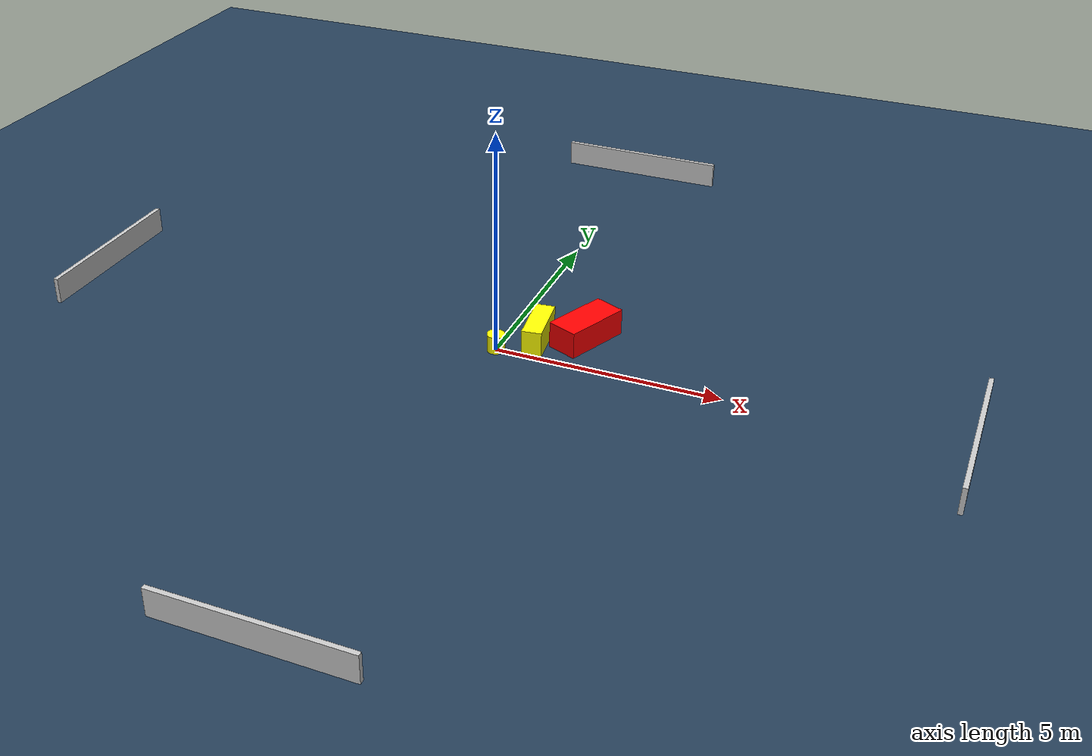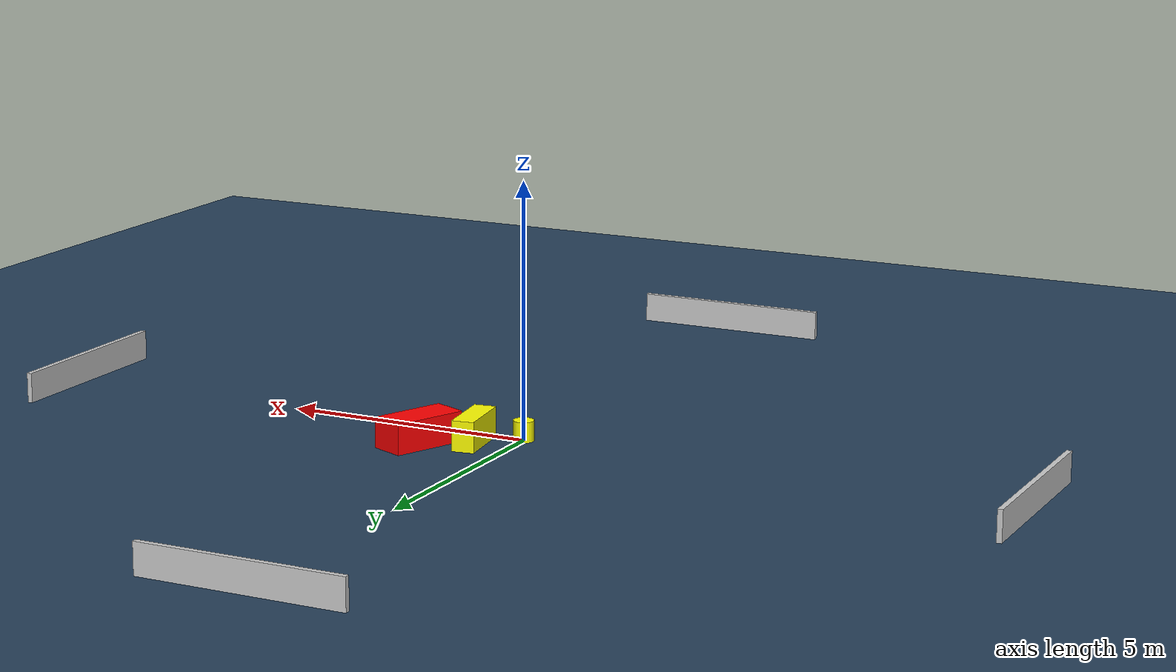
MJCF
<?xml version="1.0" ?>
<mujoco model="generated_environment">
  <option timestep="0.01" integrator="RK4" cone="elliptic"/>
  <default>
    <geom density="1"/>
  </default>
  <asset>
    <texture builtin="gradient" height="3072" name="skybox" rgb1="0.3 0.5 0.7" rgb2="0 0 0" type="skybox" width="512"/>
    <texture builtin="checker" height="300" name="groundplane" rgb1="0.2 0.3 0.4" rgb2="0.1 0.2 0.3" type="2d" width="300"/>
    <material name="groundplane" reflectance="0.2" texrepeat="5 5" texture="groundplane"/>
  </asset>
  <worldbody>
    <light dir="0 0 -1" directional="true" pos="0 0 1.5"/>
    <geom condim="3" friction="0.5 0.005 0.001" material="groundplane" name="floor" pos="0 0 0" size="0 0 0.05" type="plane"/>
    <body name="walls">
      <geom name="wall_1" condim="4" pos="-10.0 0.0 0.3" rgba="0.800000011920929 0.800000011920929 0.800000011920929 1.0" size="0.05 2.0 0.3" type="box"/>
      <geom name="wall_2" condim="4" pos="10.0 0.0 0.3" rgba="0.800000011920929 0.800000011920929 0.800000011920929 1.0" size="0.05 2.0 0.3" type="box"/>
      <geom name="wall_3" condim="4" pos="0.0 -10.0 0.3" rgba="0.800000011920929 0.800000011920929 0.800000011920929 1.0" size="2.0 0.05 0.3" type="box"/>
      <geom name="wall_4" condim="4" pos="0.0 10.0 0.3" rgba="0.800000011920929 0.800000011920929 0.800000011920929 1.0" size="2.0 0.05 0.3" type="box"/>
    </body>
    <body name="robot">
      <joint name="joint_x" type="slide" pos="0 0 0" axis="1 0 0"/>
      <joint name="joint_y" type="slide" pos="0 0 0" axis="0 1 0"/>
      <geom name="robot" type="cylinder" pos="0.0 0.0 0.2" size="0.2 0.2 0.0" mass="5.0" friction="1.0 0.005 0.0001" condim="4" rgba="1.0 1.0 0.0 1.0"/>
    </body>
    <body name="obstacle_1_movable">
      <geom name="obstacle_1_movable" condim="4" pos="0.7220129171711802 0.6443797107535316 0.3" euler="0 0 97.39026152196325" friction="0.0 0.005 0.001" rgba="1.0 1.0 0.0 1.0" size="0.6157378941115217 0.21812690184734798 0.3" type="box" mass="0.1"/>
      <joint type="free"/>
    </body>
    <body name="obstacle_2_static">
      <geom name="obstacle_2_static" condim="4" pos="1.6326380041489308 1.1499072987815913 0.3" euler="0 0 336.8753158175417" friction="0.0 0.005 0.001" rgba="1.0 0.0 0.0 1.0" size="0.35690015439342004 0.7621102371011246 0.3" type="box"/>
    </body>
  </worldbody>
  <actuator>
    <motor name="actuator_x" joint="joint_x" gear="1" ctrlrange="-1 1"/>
    <motor name="actuator_y" joint="joint_y" gear="1" ctrlrange="-1 1"/>
  </actuator>
</mujoco>
